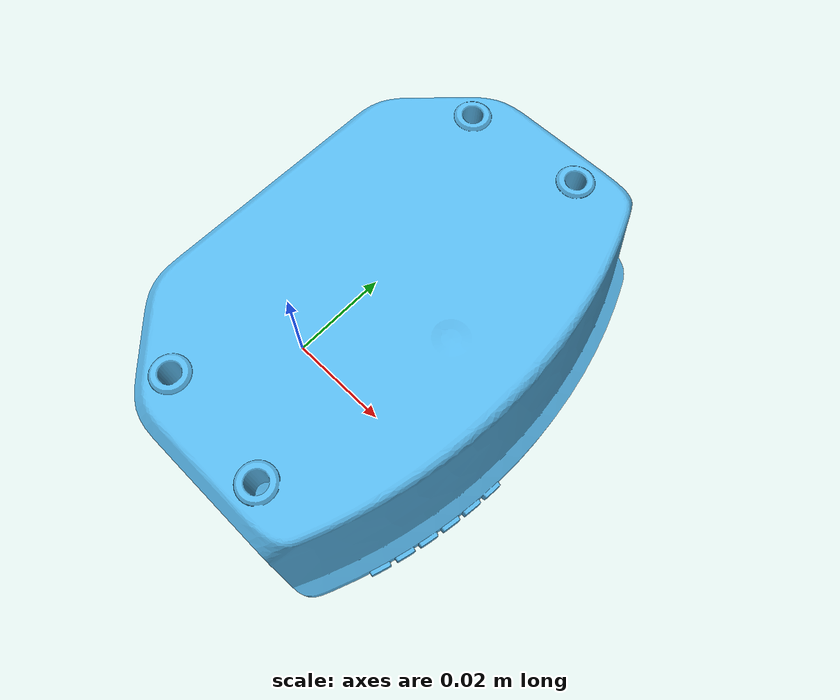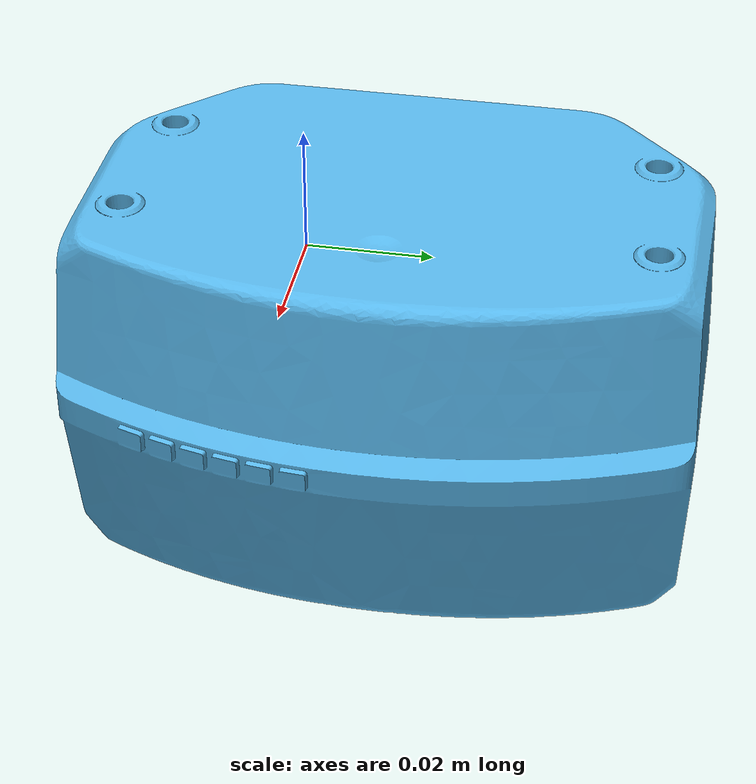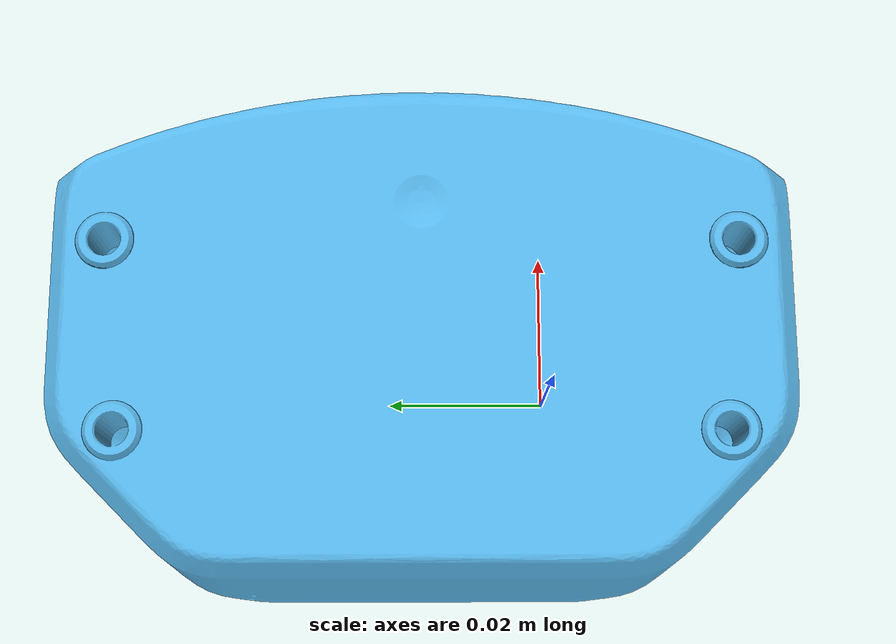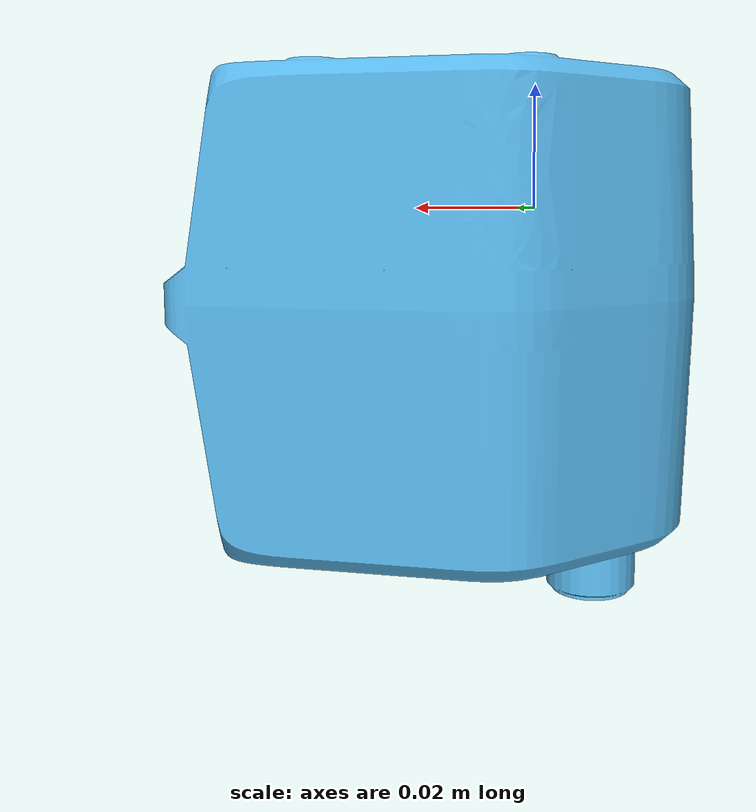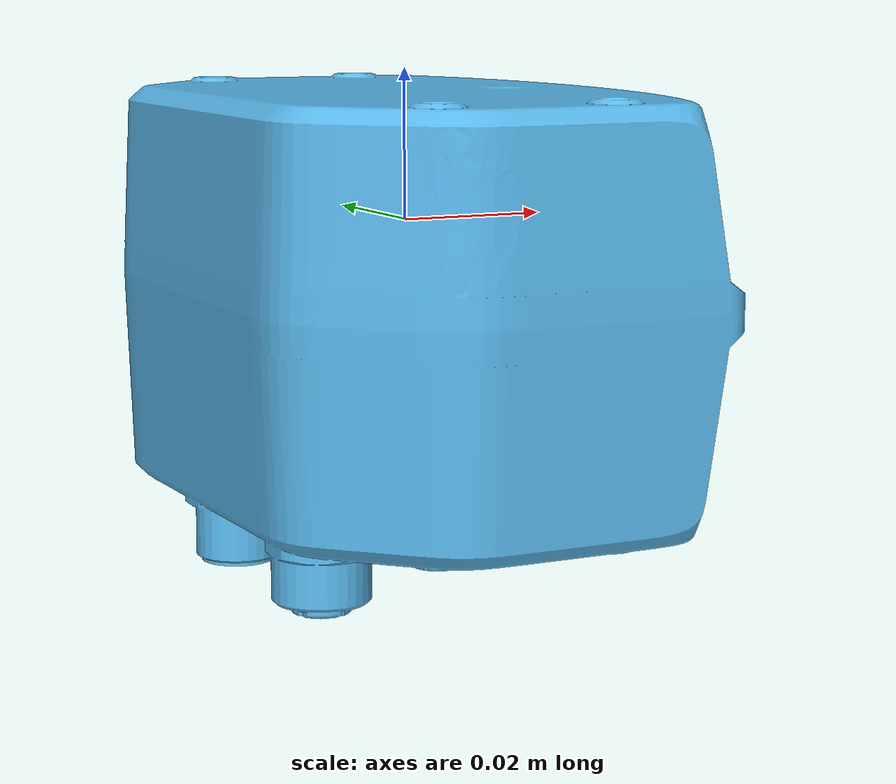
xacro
<?xml version="1.0"?>
<robot xmlns:xacro="http://wiki.ros.org/xacro" name="r2300" >
    <xacro:include filename="$(find pf_description)/urdf/r2300.urdf.xacro" />

    <!-- create a virtual root link -->
    <link name="world" />

    <!-- instantiate r2300 macro -->
    <xacro:r2300 prefix="" />

    <!-- connect world link to scanner link -->
    <joint name="world_joint" type="fixed">
        <parent link="world" />
        <child link = "sensor_laser" />
        <origin xyz="0.0 0.0 0.0" rpy="0.0 0.0 0.0" />
    </joint>
</robot>

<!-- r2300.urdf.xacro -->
<robot xmlns:xacro="http://ros.org/wiki/xacro">

    <xacro:macro name="r2300" params="prefix" >
        <link name="${prefix}sensor_laser" >
            <visual>
                <origin xyz="-0.00195 0.0158 -0.0094" rpy="-1.57 0 1.57" />
                <geometry>
                    <mesh filename="package://pf_description/meshes/R2300.stl" scale="0.001 0.001 0.001" />
                </geometry>
            </visual>

            <collision>
                <origin xyz="-0.00195 0.0158 -0.0094" rpy="-1.57 0 1.57" />
                <geometry>
                    <box size="0.0951 0.0685 0.0695" />
                </geometry>
            </collision>
        </link>
    </xacro:macro>
</robot>
